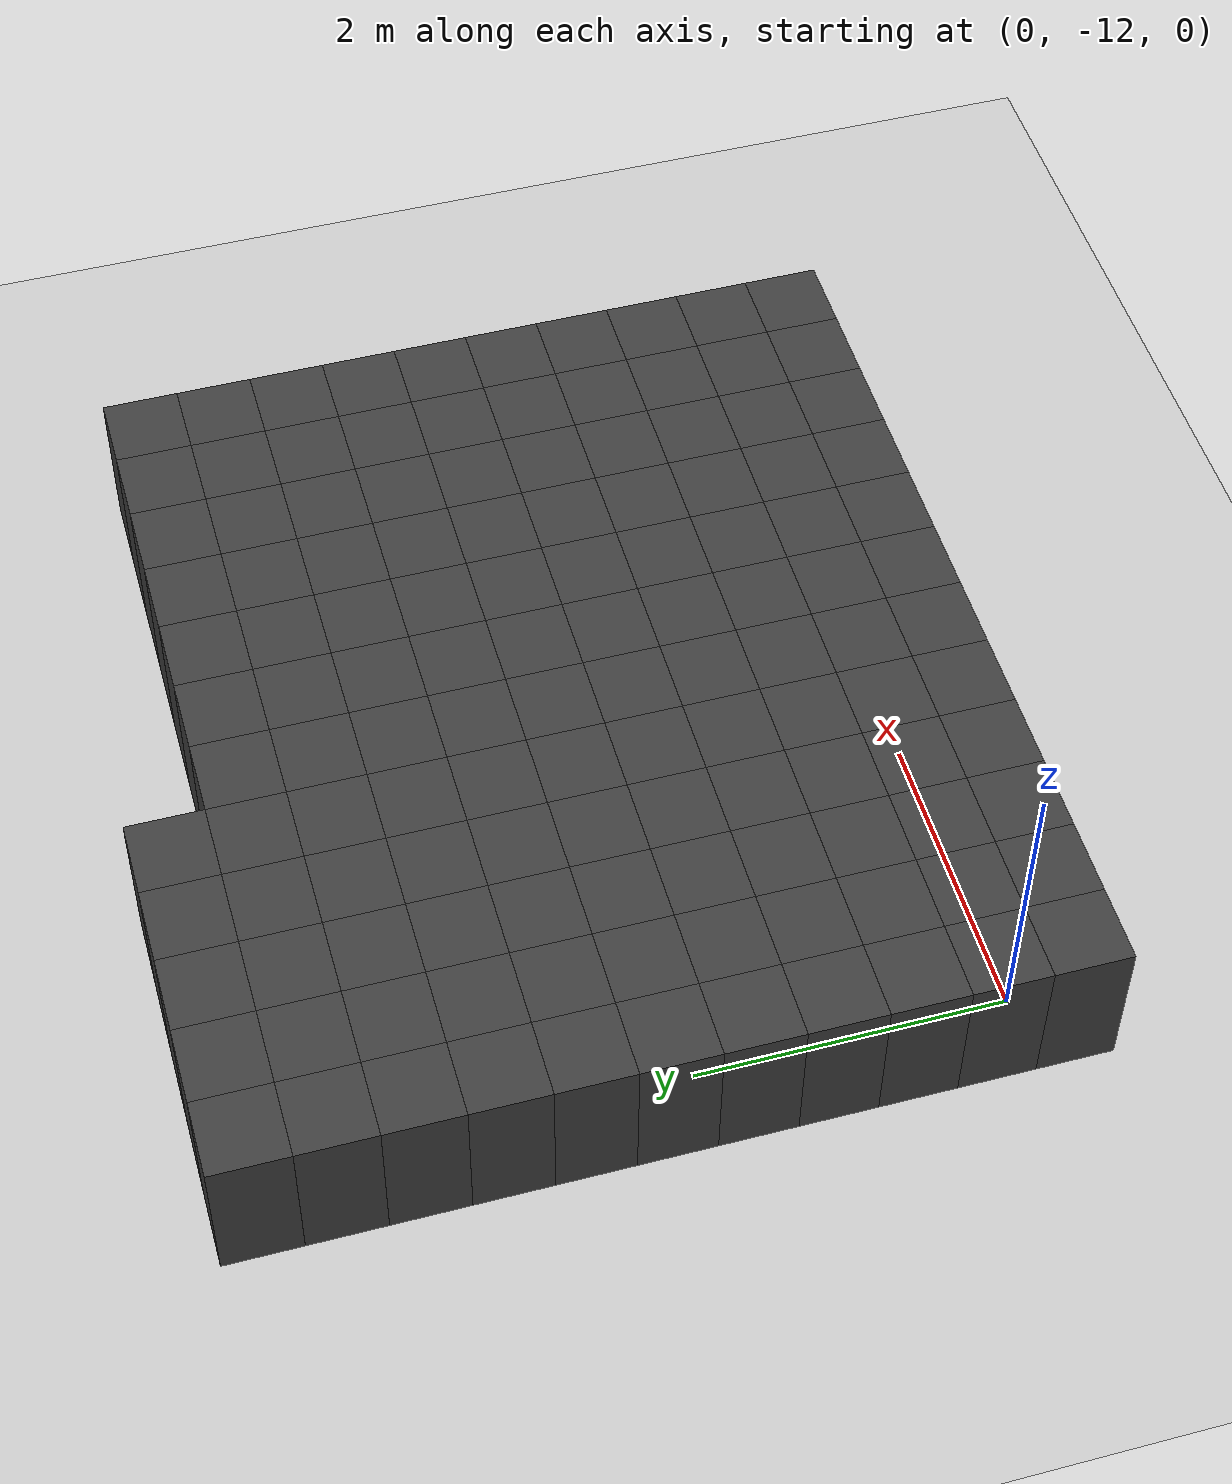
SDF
<sdf version="1.7">
 <world name="map_10764">
  <model name="ground_plane">
   <static>true</static>
   <link name="link">
    <collision name="collision">
     <geometry><plane><normal>0 0 1</normal><size>200 200</size></plane></geometry>
    </collision>
    <visual name="visual">
     <geometry><plane><normal>0 0 1</normal><size>200 200</size></plane></geometry>
     <material><ambient>0.8 0.8 0.8 1</ambient><diffuse>0.8 0.8 0.8 1</diffuse></material>
    </visual>
   </link>
  </model>
  <model name="maze_environment">
   <static>true</static>
   <link name="wall_1623">
    <pose>-0.250 -7.250 0.500 0 0 0</pose>
    <collision name="col"><geometry><box><size>0.5 0.5 1.0</size></box></geometry></collision>
    <visual name="vis">
     <geometry><box><size>0.5 0.5 1.0</size></box></geometry>
     <material><ambient>0.15 0.15 0.15 1</ambient><diffuse>0.25 0.25 0.25 1</diffuse></material>
    </visual>
   </link>
   <link name="wall_1624">
    <pose>0.250 -7.250 0.500 0 0 0</pose>
    <collision name="col"><geometry><box><size>0.5 0.5 1.0</size></box></geometry></collision>
    <visual name="vis">
     <geometry><box><size>0.5 0.5 1.0</size></box></geometry>
     <material><ambient>0.15 0.15 0.15 1</ambient><diffuse>0.25 0.25 0.25 1</diffuse></material>
    </visual>
   </link>
   <link name="wall_1625">
    <pose>0.750 -7.250 0.500 0 0 0</pose>
    <collision name="col"><geometry><box><size>0.5 0.5 1.0</size></box></geometry></collision>
    <visual name="vis">
     <geometry><box><size>0.5 0.5 1.0</size></box></geometry>
     <material><ambient>0.15 0.15 0.15 1</ambient><diffuse>0.25 0.25 0.25 1</diffuse></material>
    </visual>
   </link>
   <link name="wall_1626">
    <pose>1.250 -7.250 0.500 0 0 0</pose>
    <collision name="col"><geometry><box><size>0.5 0.5 1.0</size></box></geometry></collision>
    <visual name="vis">
     <geometry><box><size>0.5 0.5 1.0</size></box></geometry>
     <material><ambient>0.15 0.15 0.15 1</ambient><diffuse>0.25 0.25 0.25 1</diffuse></material>
    </visual>
   </link>
   <link name="wall_1627">
    <pose>1.750 -7.250 0.500 0 0 0</pose>
    <collision name="col"><geometry><box><size>0.5 0.5 1.0</size></box></geometry></collision>
    <visual name="vis">
     <geometry><box><size>0.5 0.5 1.0</size></box></geometry>
     <material><ambient>0.15 0.15 0.15 1</ambient><diffuse>0.25 0.25 0.25 1</diffuse></material>
    </visual>
   </link>
   <link name="wall_1672">
    <pose>-0.250 -7.750 0.500 0 0 0</pose>
    <collision name="col"><geometry><box><size>0.5 0.5 1.0</size></box></geometry></collision>
    <visual name="vis">
     <geometry><box><size>0.5 0.5 1.0</size></box></geometry>
     <material><ambient>0.15 0.15 0.15 1</ambient><diffuse>0.25 0.25 0.25 1</diffuse></material>
    </visual>
   </link>
   <link name="wall_1673">
    <pose>0.250 -7.750 0.500 0 0 0</pose>
    <collision name="col"><geometry><box><size>0.5 0.5 1.0</size></box></geometry></collision>
    <visual name="vis">
     <geometry><box><size>0.5 0.5 1.0</size></box></geometry>
     <material><ambient>0.15 0.15 0.15 1</ambient><diffuse>0.25 0.25 0.25 1</diffuse></material>
    </visual>
   </link>
   <link name="wall_1674">
    <pose>0.750 -7.750 0.500 0 0 0</pose>
    <collision name="col"><geometry><box><size>0.5 0.5 1.0</size></box></geometry></collision>
    <visual name="vis">
     <geometry><box><size>0.5 0.5 1.0</size></box></geometry>
     <material><ambient>0.15 0.15 0.15 1</ambient><diffuse>0.25 0.25 0.25 1</diffuse></material>
    </visual>
   </link>
   <link name="wall_1675">
    <pose>1.250 -7.750 0.500 0 0 0</pose>
    <collision name="col"><geometry><box><size>0.5 0.5 1.0</size></box></geometry></collision>
    <visual name="vis">
     <geometry><box><size>0.5 0.5 1.0</size></box></geometry>
     <material><ambient>0.15 0.15 0.15 1</ambient><diffuse>0.25 0.25 0.25 1</diffuse></material>
    </visual>
   </link>
   <link name="wall_1676">
    <pose>1.750 -7.750 0.500 0 0 0</pose>
    <collision name="col"><geometry><box><size>0.5 0.5 1.0</size></box></geometry></collision>
    <visual name="vis">
     <geometry><box><size>0.5 0.5 1.0</size></box></geometry>
     <material><ambient>0.15 0.15 0.15 1</ambient><diffuse>0.25 0.25 0.25 1</diffuse></material>
    </visual>
   </link>
   <link name="wall_1677">
    <pose>2.250 -7.750 0.500 0 0 0</pose>
    <collision name="col"><geometry><box><size>0.5 0.5 1.0</size></box></geometry></collision>
    <visual name="vis">
     <geometry><box><size>0.5 0.5 1.0</size></box></geometry>
     <material><ambient>0.15 0.15 0.15 1</ambient><diffuse>0.25 0.25 0.25 1</diffuse></material>
    </visual>
   </link>
   <link name="wall_1678">
    <pose>2.750 -7.750 0.500 0 0 0</pose>
    <collision name="col"><geometry><box><size>0.5 0.5 1.0</size></box></geometry></collision>
    <visual name="vis">
     <geometry><box><size>0.5 0.5 1.0</size></box></geometry>
     <material><ambient>0.15 0.15 0.15 1</ambient><diffuse>0.25 0.25 0.25 1</diffuse></material>
    </visual>
   </link>
   <link name="wall_1679">
    <pose>3.250 -7.750 0.500 0 0 0</pose>
    <collision name="col"><geometry><box><size>0.5 0.5 1.0</size></box></geometry></collision>
    <visual name="vis">
     <geometry><box><size>0.5 0.5 1.0</size></box></geometry>
     <material><ambient>0.15 0.15 0.15 1</ambient><diffuse>0.25 0.25 0.25 1</diffuse></material>
    </visual>
   </link>
   <link name="wall_1680">
    <pose>3.750 -7.750 0.500 0 0 0</pose>
    <collision name="col"><geometry><box><size>0.5 0.5 1.0</size></box></geometry></collision>
    <visual name="vis">
     <geometry><box><size>0.5 0.5 1.0</size></box></geometry>
     <material><ambient>0.15 0.15 0.15 1</ambient><diffuse>0.25 0.25 0.25 1</diffuse></material>
    </visual>
   </link>
   <link name="wall_1681">
    <pose>4.250 -7.750 0.500 0 0 0</pose>
    <collision name="col"><geometry><box><size>0.5 0.5 1.0</size></box></geometry></collision>
    <visual name="vis">
     <geometry><box><size>0.5 0.5 1.0</size></box></geometry>
     <material><ambient>0.15 0.15 0.15 1</ambient><diffuse>0.25 0.25 0.25 1</diffuse></material>
    </visual>
   </link>
   <link name="wall_1682">
    <pose>4.750 -7.750 0.500 0 0 0</pose>
    <collision name="col"><geometry><box><size>0.5 0.5 1.0</size></box></geometry></collision>
    <visual name="vis">
     <geometry><box><size>0.5 0.5 1.0</size></box></geometry>
     <material><ambient>0.15 0.15 0.15 1</ambient><diffuse>0.25 0.25 0.25 1</diffuse></material>
    </visual>
   </link>
   <link name="wall_1683">
    <pose>5.250 -7.750 0.500 0 0 0</pose>
    <collision name="col"><geometry><box><size>0.5 0.5 1.0</size></box></geometry></collision>
    <visual name="vis">
     <geometry><box><size>0.5 0.5 1.0</size></box></geometry>
     <material><ambient>0.15 0.15 0.15 1</ambient><diffuse>0.25 0.25 0.25 1</diffuse></material>
    </visual>
   </link>
   <link name="wall_1721">
    <pose>-0.250 -8.250 0.500 0 0 0</pose>
    <collision name="col"><geometry><box><size>0.5 0.5 1.0</size></box></geometry></collision>
    <visual name="vis">
     <geometry><box><size>0.5 0.5 1.0</size></box></geometry>
     <material><ambient>0.15 0.15 0.15 1</ambient><diffuse>0.25 0.25 0.25 1</diffuse></material>
    </visual>
   </link>
   <link name="wall_1722">
    <pose>0.250 -8.250 0.500 0 0 0</pose>
    <collision name="col"><geometry><box><size>0.5 0.5 1.0</size></box></geometry></collision>
    <visual name="vis">
     <geometry><box><size>0.5 0.5 1.0</size></box></geometry>
     <material><ambient>0.15 0.15 0.15 1</ambient><diffuse>0.25 0.25 0.25 1</diffuse></material>
    </visual>
   </link>
   <link name="wall_1723">
    <pose>0.750 -8.250 0.500 0 0 0</pose>
    <collision name="col"><geometry><box><size>0.5 0.5 1.0</size></box></geometry></collision>
    <visual name="vis">
     <geometry><box><size>0.5 0.5 1.0</size></box></geometry>
     <material><ambient>0.15 0.15 0.15 1</ambient><diffuse>0.25 0.25 0.25 1</diffuse></material>
    </visual>
   </link>
   <link name="wall_1724">
    <pose>1.250 -8.250 0.500 0 0 0</pose>
    <collision name="col"><geometry><box><size>0.5 0.5 1.0</size></box></geometry></collision>
    <visual name="vis">
     <geometry><box><size>0.5 0.5 1.0</size></box></geometry>
     <material><ambient>0.15 0.15 0.15 1</ambient><diffuse>0.25 0.25 0.25 1</diffuse></material>
    </visual>
   </link>
   <link name="wall_1725">
    <pose>1.750 -8.250 0.500 0 0 0</pose>
    <collision name="col"><geometry><box><size>0.5 0.5 1.0</size></box></geometry></collision>
    <visual name="vis">
     <geometry><box><size>0.5 0.5 1.0</size></box></geometry>
     <material><ambient>0.15 0.15 0.15 1</ambient><diffuse>0.25 0.25 0.25 1</diffuse></material>
    </visual>
   </link>
   <link name="wall_1726">
    <pose>2.250 -8.250 0.500 0 0 0</pose>
    <collision name="col"><geometry><box><size>0.5 0.5 1.0</size></box></geometry></collision>
    <visual name="vis">
     <geometry><box><size>0.5 0.5 1.0</size></box></geometry>
     <material><ambient>0.15 0.15 0.15 1</ambient><diffuse>0.25 0.25 0.25 1</diffuse></material>
    </visual>
   </link>
   <link name="wall_1727">
    <pose>2.750 -8.250 0.500 0 0 0</pose>
    <collision name="col"><geometry><box><size>0.5 0.5 1.0</size></box></geometry></collision>
    <visual name="vis">
     <geometry><box><size>0.5 0.5 1.0</size></box></geometry>
     <material><ambient>0.15 0.15 0.15 1</ambient><diffuse>0.25 0.25 0.25 1</diffuse></material>
    </visual>
   </link>
   <link name="wall_1728">
    <pose>3.250 -8.250 0.500 0 0 0</pose>
    <collision name="col"><geometry><box><size>0.5 0.5 1.0</size></box></geometry></collision>
    <visual name="vis">
     <geometry><box><size>0.5 0.5 1.0</size></box></geometry>
     <material><ambient>0.15 0.15 0.15 1</ambient><diffuse>0.25 0.25 0.25 1</diffuse></material>
    </visual>
   </link>
   <link name="wall_1729">
    <pose>3.750 -8.250 0.500 0 0 0</pose>
    <collision name="col"><geometry><box><size>0.5 0.5 1.0</size></box></geometry></collision>
    <visual name="vis">
     <geometry><box><size>0.5 0.5 1.0</size></box></geometry>
     <material><ambient>0.15 0.15 0.15 1</ambient><diffuse>0.25 0.25 0.25 1</diffuse></material>
    </visual>
   </link>
   <link name="wall_1730">
    <pose>4.250 -8.250 0.500 0 0 0</pose>
    <collision name="col"><geometry><box><size>0.5 0.5 1.0</size></box></geometry></collision>
    <visual name="vis">
     <geometry><box><size>0.5 0.5 1.0</size></box></geometry>
     <material><ambient>0.15 0.15 0.15 1</ambient><diffuse>0.25 0.25 0.25 1</diffuse></material>
    </visual>
   </link>
   <link name="wall_1731">
    <pose>4.750 -8.250 0.500 0 0 0</pose>
    <collision name="col"><geometry><box><size>0.5 0.5 1.0</size></box></geometry></collision>
    <visual name="vis">
     <geometry><box><size>0.5 0.5 1.0</size></box></geometry>
     <material><ambient>0.15 0.15 0.15 1</ambient><diffuse>0.25 0.25 0.25 1</diffuse></material>
    </visual>
   </link>
   <link name="wall_1732">
    <pose>5.250 -8.250 0.500 0 0 0</pose>
    <collision name="col"><geometry><box><size>0.5 0.5 1.0</size></box></geometry></collision>
    <visual name="vis">
     <geometry><box><size>0.5 0.5 1.0</size></box></geometry>
     <material><ambient>0.15 0.15 0.15 1</ambient><diffuse>0.25 0.25 0.25 1</diffuse></material>
    </visual>
   </link>
   <link name="wall_1770">
    <pose>-0.250 -8.750 0.500 0 0 0</pose>
    <collision name="col"><geometry><box><size>0.5 0.5 1.0</size></box></geometry></collision>
    <visual name="vis">
     <geometry><box><size>0.5 0.5 1.0</size></box></geometry>
     <material><ambient>0.15 0.15 0.15 1</ambient><diffuse>0.25 0.25 0.25 1</diffuse></material>
    </visual>
   </link>
   <link name="wall_1771">
    <pose>0.250 -8.750 0.500 0 0 0</pose>
    <collision name="col"><geometry><box><size>0.5 0.5 1.0</size></box></geometry></collision>
    <visual name="vis">
     <geometry><box><size>0.5 0.5 1.0</size></box></geometry>
     <material><ambient>0.15 0.15 0.15 1</ambient><diffuse>0.25 0.25 0.25 1</diffuse></material>
    </visual>
   </link>
   <link name="wall_1772">
    <pose>0.750 -8.750 0.500 0 0 0</pose>
    <collision name="col"><geometry><box><size>0.5 0.5 1.0</size></box></geometry></collision>
    <visual name="vis">
     <geometry><box><size>0.5 0.5 1.0</size></box></geometry>
     <material><ambient>0.15 0.15 0.15 1</ambient><diffuse>0.25 0.25 0.25 1</diffuse></material>
    </visual>
   </link>
   <link name="wall_1773">
    <pose>1.250 -8.750 0.500 0 0 0</pose>
    <collision name="col"><geometry><box><size>0.5 0.5 1.0</size></box></geometry></collision>
    <visual name="vis">
     <geometry><box><size>0.5 0.5 1.0</size></box></geometry>
     <material><ambient>0.15 0.15 0.15 1</ambient><diffuse>0.25 0.25 0.25 1</diffuse></material>
    </visual>
   </link>
   <link name="wall_1774">
    <pose>1.750 -8.750 0.500 0 0 0</pose>
    <collision name="col"><geometry><box><size>0.5 0.5 1.0</size></box></geometry></collision>
    <visual name="vis">
     <geometry><box><size>0.5 0.5 1.0</size></box></geometry>
     <material><ambient>0.15 0.15 0.15 1</ambient><diffuse>0.25 0.25 0.25 1</diffuse></material>
    </visual>
   </link>
   <link name="wall_1775">
    <pose>2.250 -8.750 0.500 0 0 0</pose>
    <collision name="col"><geometry><box><size>0.5 0.5 1.0</size></box></geometry></collision>
    <visual name="vis">
     <geometry><box><size>0.5 0.5 1.0</size></box></geometry>
     <material><ambient>0.15 0.15 0.15 1</ambient><diffuse>0.25 0.25 0.25 1</diffuse></material>
    </visual>
   </link>
   <link name="wall_1776">
    <pose>2.750 -8.750 0.500 0 0 0</pose>
    <collision name="col"><geometry><box><size>0.5 0.5 1.0</size></box></geometry></collision>
    <visual name="vis">
     <geometry><box><size>0.5 0.5 1.0</size></box></geometry>
     <material><ambient>0.15 0.15 0.15 1</ambient><diffuse>0.25 0.25 0.25 1</diffuse></material>
    </visual>
   </link>
   <link name="wall_1777">
    <pose>3.250 -8.750 0.500 0 0 0</pose>
    <collision name="col"><geometry><box><size>0.5 0.5 1.0</size></box></geometry></collision>
    <visual name="vis">
     <geometry><box><size>0.5 0.5 1.0</size></box></geometry>
     <material><ambient>0.15 0.15 0.15 1</ambient><diffuse>0.25 0.25 0.25 1</diffuse></material>
    </visual>
   </link>
   <link name="wall_1778">
    <pose>3.750 -8.750 0.500 0 0 0</pose>
    <collision name="col"><geometry><box><size>0.5 0.5 1.0</size></box></geometry></collision>
    <visual name="vis">
     <geometry><box><size>0.5 0.5 1.0</size></box></geometry>
     <material><ambient>0.15 0.15 0.15 1</ambient><diffuse>0.25 0.25 0.25 1</diffuse></material>
    </visual>
   </link>
   <link name="wall_1779">
    <pose>4.250 -8.750 0.500 0 0 0</pose>
    <collision name="col"><geometry><box><size>0.5 0.5 1.0</size></box></geometry></collision>
    <visual name="vis">
     <geometry><box><size>0.5 0.5 1.0</size></box></geometry>
     <material><ambient>0.15 0.15 0.15 1</ambient><diffuse>0.25 0.25 0.25 1</diffuse></material>
    </visual>
   </link>
   <link name="wall_1780">
    <pose>4.750 -8.750 0.500 0 0 0</pose>
    <collision name="col"><geometry><box><size>0.5 0.5 1.0</size></box></geometry></collision>
    <visual name="vis">
     <geometry><box><size>0.5 0.5 1.0</size></box></geometry>
     <material><ambient>0.15 0.15 0.15 1</ambient><diffuse>0.25 0.25 0.25 1</diffuse></material>
    </visual>
   </link>
   <link name="wall_1781">
    <pose>5.250 -8.750 0.500 0 0 0</pose>
    <collision name="col"><geometry><box><size>0.5 0.5 1.0</size></box></geometry></collision>
    <visual name="vis">
     <geometry><box><size>0.5 0.5 1.0</size></box></geometry>
     <material><ambient>0.15 0.15 0.15 1</ambient><diffuse>0.25 0.25 0.25 1</diffuse></material>
    </visual>
   </link>
   <link name="wall_1819">
    <pose>-0.250 -9.250 0.500 0 0 0</pose>
    <collision name="col"><geometry><box><size>0.5 0.5 1.0</size></box></geometry></collision>
    <visual name="vis">
     <geometry><box><size>0.5 0.5 1.0</size></box></geometry>
     <material><ambient>0.15 0.15 0.15 1</ambient><diffuse>0.25 0.25 0.25 1</diffuse></material>
    </visual>
   </link>
   <link name="wall_1820">
    <pose>0.250 -9.250 0.500 0 0 0</pose>
    <collision name="col"><geometry><box><size>0.5 0.5 1.0</size></box></geometry></collision>
    <visual name="vis">
     <geometry><box><size>0.5 0.5 1.0</size></box></geometry>
     <material><ambient>0.15 0.15 0.15 1</ambient><diffuse>0.25 0.25 0.25 1</diffuse></material>
    </visual>
   </link>
   <link name="wall_1821">
    <pose>0.750 -9.250 0.500 0 0 0</pose>
    <collision name="col"><geometry><box><size>0.5 0.5 1.0</size></box></geometry></collision>
    <visual name="vis">
     <geometry><box><size>0.5 0.5 1.0</size></box></geometry>
     <material><ambient>0.15 0.15 0.15 1</ambient><diffuse>0.25 0.25 0.25 1</diffuse></material>
    </visual>
   </link>
   <link name="wall_1822">
    <pose>1.250 -9.250 0.500 0 0 0</pose>
    <collision name="col"><geometry><box><size>0.5 0.5 1.0</size></box></geometry></collision>
    <visual name="vis">
     <geometry><box><size>0.5 0.5 1.0</size></box></geometry>
     <material><ambient>0.15 0.15 0.15 1</ambient><diffuse>0.25 0.25 0.25 1</diffuse></material>
    </visual>
   </link>
   <link name="wall_1823">
    <pose>1.750 -9.250 0.500 0 0 0</pose>
    <collision name="col"><geometry><box><size>0.5 0.5 1.0</size></box></geometry></collision>
    <visual name="vis">
     <geometry><box><size>0.5 0.5 1.0</size></box></geometry>
     <material><ambient>0.15 0.15 0.15 1</ambient><diffuse>0.25 0.25 0.25 1</diffuse></material>
    </visual>
   </link>
   <link name="wall_1824">
    <pose>2.250 -9.250 0.500 0 0 0</pose>
    <collision name="col"><geometry><box><size>0.5 0.5 1.0</size></box></geometry></collision>
    <visual name="vis">
     <geometry><box><size>0.5 0.5 1.0</size></box></geometry>
     <material><ambient>0.15 0.15 0.15 1</ambient><diffuse>0.25 0.25 0.25 1</diffuse></material>
    </visual>
   </link>
   <link name="wall_1825">
    <pose>2.750 -9.250 0.500 0 0 0</pose>
    <collision name="col"><geometry><box><size>0.5 0.5 1.0</size></box></geometry></collision>
    <visual name="vis">
     <geometry><box><size>0.5 0.5 1.0</size></box></geometry>
     <material><ambient>0.15 0.15 0.15 1</ambient><diffuse>0.25 0.25 0.25 1</diffuse></material>
    </visual>
   </link>
   <link name="wall_1826">
    <pose>3.250 -9.250 0.500 0 0 0</pose>
    <collision name="col"><geometry><box><size>0.5 0.5 1.0</size></box></geometry></collision>
    <visual name="vis">
     <geometry><box><size>0.5 0.5 1.0</size></box></geometry>
     <material><ambient>0.15 0.15 0.15 1</ambient><diffuse>0.25 0.25 0.25 1</diffuse></material>
    </visual>
   </link>
   <link name="wall_1827">
    <pose>3.750 -9.250 0.500 0 0 0</pose>
    <collision name="col"><geometry><box><size>0.5 0.5 1.0</size></box></geometry></collision>
    <visual name="vis">
     <geometry><box><size>0.5 0.5 1.0</size></box></geometry>
     <material><ambient>0.15 0.15 0.15 1</ambient><diffuse>0.25 0.25 0.25 1</diffuse></material>
    </visual>
   </link>
   <link name="wall_1828">
    <pose>4.250 -9.250 0.500 0 0 0</pose>
    <collision name="col"><geometry><box><size>0.5 0.5 1.0</size></box></geometry></collision>
    <visual name="vis">
     <geometry><box><size>0.5 0.5 1.0</size></box></geometry>
     <material><ambient>0.15 0.15 0.15 1</ambient><diffuse>0.25 0.25 0.25 1</diffuse></material>
    </visual>
   </link>
   <link name="wall_1829">
    <pose>4.750 -9.250 0.500 0 0 0</pose>
    <collision name="col"><geometry><box><size>0.5 0.5 1.0</size></box></geometry></collision>
    <visual name="vis">
     <geometry><box><size>0.5 0.5 1.0</size></box></geometry>
     <material><ambient>0.15 0.15 0.15 1</ambient><diffuse>0.25 0.25 0.25 1</diffuse></material>
    </visual>
   </link>
   <link name="wall_1830">
    <pose>5.250 -9.250 0.500 0 0 0</pose>
    <collision name="col"><geometry><box><size>0.5 0.5 1.0</size></box></geometry></collision>
    <visual name="vis">
     <geometry><box><size>0.5 0.5 1.0</size></box></geometry>
     <material><ambient>0.15 0.15 0.15 1</ambient><diffuse>0.25 0.25 0.25 1</diffuse></material>
    </visual>
   </link>
   <link name="wall_1868">
    <pose>-0.250 -9.750 0.500 0 0 0</pose>
    <collision name="col"><geometry><box><size>0.5 0.5 1.0</size></box></geometry></collision>
    <visual name="vis">
     <geometry><box><size>0.5 0.5 1.0</size></box></geometry>
     <material><ambient>0.15 0.15 0.15 1</ambient><diffuse>0.25 0.25 0.25 1</diffuse></material>
    </visual>
   </link>
   <link name="wall_1869">
    <pose>0.250 -9.750 0.500 0 0 0</pose>
    <collision name="col"><geometry><box><size>0.5 0.5 1.0</size></box></geometry></collision>
    <visual name="vis">
     <geometry><box><size>0.5 0.5 1.0</size></box></geometry>
     <material><ambient>0.15 0.15 0.15 1</ambient><diffuse>0.25 0.25 0.25 1</diffuse></material>
    </visual>
   </link>
   <link name="wall_1870">
    <pose>0.750 -9.750 0.500 0 0 0</pose>
    <collision name="col"><geometry><box><size>0.5 0.5 1.0</size></box></geometry></collision>
    <visual name="vis">
     <geometry><box><size>0.5 0.5 1.0</size></box></geometry>
     <material><ambient>0.15 0.15 0.15 1</ambient><diffuse>0.25 0.25 0.25 1</diffuse></material>
    </visual>
   </link>
   <link name="wall_1871">
    <pose>1.250 -9.750 0.500 0 0 0</pose>
    <collision name="col"><geometry><box><size>0.5 0.5 1.0</size></box></geometry></collision>
    <visual name="vis">
     <geometry><box><size>0.5 0.5 1.0</size></box></geometry>
     <material><ambient>0.15 0.15 0.15 1</ambient><diffuse>0.25 0.25 0.25 1</diffuse></material>
    </visual>
   </link>
   <link name="wall_1872">
    <pose>1.750 -9.750 0.500 0 0 0</pose>
    <collision name="col"><geometry><box><size>0.5 0.5 1.0</size></box></geometry></collision>
    <visual name="vis">
     <geometry><box><size>0.5 0.5 1.0</size></box></geometry>
     <material><ambient>0.15 0.15 0.15 1</ambient><diffuse>0.25 0.25 0.25 1</diffuse></material>
    </visual>
   </link>
   <link name="wall_1873">
    <pose>2.250 -9.750 0.500 0 0 0</pose>
    <collision name="col"><geometry><box><size>0.5 0.5 1.0</size></box></geometry></collision>
    <visual name="vis">
     <geometry><box><size>0.5 0.5 1.0</size></box></geometry>
     <material><ambient>0.15 0.15 0.15 1</ambient><diffuse>0.25 0.25 0.25 1</diffuse></material>
    </visual>
   </link>
   <link name="wall_1874">
    <pose>2.750 -9.750 0.500 0 0 0</pose>
    <collision name="col"><geometry><box><size>0.5 0.5 1.0</size></box></geometry></collision>
    <visual name="vis">
     <geometry><box><size>0.5 0.5 1.0</size></box></geometry>
     <material><ambient>0.15 0.15 0.15 1</ambient><diffuse>0.25 0.25 0.25 1</diffuse></material>
    </visual>
   </link>
   <link name="wall_1875">
    <pose>3.250 -9.750 0.500 0 0 0</pose>
    <collision name="col"><geometry><box><size>0.5 0.5 1.0</size></box></geometry></collision>
    <visual name="vis">
     <geometry><box><size>0.5 0.5 1.0</size></box></geometry>
     <material><ambient>0.15 0.15 0.15 1</ambient><diffuse>0.25 0.25 0.25 1</diffuse></material>
    </visual>
   </link>
   <link name="wall_1876">
    <pose>3.750 -9.750 0.500 0 0 0</pose>
    <collision name="col"><geometry><box><size>0.5 0.5 1.0</size></box></geometry></collision>
    <visual name="vis">
     <geometry><box><size>0.5 0.5 1.0</size></box></geometry>
     <material><ambient>0.15 0.15 0.15 1</ambient><diffuse>0.25 0.25 0.25 1</diffuse></material>
    </visual>
   </link>
   <link name="wall_1877">
    <pose>4.250 -9.750 0.500 0 0 0</pose>
    <collision name="col"><geometry><box><size>0.5 0.5 1.0</size></box></geometry></collision>
    <visual name="vis">
     <geometry><box><size>0.5 0.5 1.0</size></box></geometry>
     <material><ambient>0.15 0.15 0.15 1</ambient><diffuse>0.25 0.25 0.25 1</diffuse></material>
    </visual>
   </link>
   <link name="wall_1878">
    <pose>4.750 -9.750 0.500 0 0 0</pose>
    <collision name="col"><geometry><box><size>0.5 0.5 1.0</size></box></geometry></collision>
    <visual name="vis">
     <geometry><box><size>0.5 0.5 1.0</size></box></geometry>
     <material><ambient>0.15 0.15 0.15 1</ambient><diffuse>0.25 0.25 0.25 1</diffuse></material>
    </visual>
   </link>
   <link name="wall_1879">
    <pose>5.250 -9.750 0.500 0 0 0</pose>
    <collision name="col"><geometry><box><size>0.5 0.5 1.0</size></box></geometry></collision>
    <visual name="vis">
     <geometry><box><size>0.5 0.5 1.0</size></box></geometry>
     <material><ambient>0.15 0.15 0.15 1</ambient><diffuse>0.25 0.25 0.25 1</diffuse></material>
    </visual>
   </link>
   <link name="wall_1917">
    <pose>-0.250 -10.250 0.500 0 0 0</pose>
    <collision name="col"><geometry><box><size>0.5 0.5 1.0</size></box></geometry></collision>
    <visual name="vis">
     <geometry><box><size>0.5 0.5 1.0</size></box></geometry>
     <material><ambient>0.15 0.15 0.15 1</ambient><diffuse>0.25 0.25 0.25 1</diffuse></material>
    </visual>
   </link>
   <link name="wall_1918">
    <pose>0.250 -10.250 0.500 0 0 0</pose>
    <collision name="col"><geometry><box><size>0.5 0.5 1.0</size></box></geometry></collision>
    <visual name="vis">
     <geometry><box><size>0.5 0.5 1.0</size></box></geometry>
     <material><ambient>0.15 0.15 0.15 1</ambient><diffuse>0.25 0.25 0.25 1</diffuse></material>
    </visual>
   </link>
   <link name="wall_1919">
    <pose>0.750 -10.250 0.500 0 0 0</pose>
    <collision name="col"><geometry><box><size>0.5 0.5 1.0</size></box></geometry></collision>
    <visual name="vis">
     <geometry><box><size>0.5 0.5 1.0</size></box></geometry>
     <material><ambient>0.15 0.15 0.15 1</ambient><diffuse>0.25 0.25 0.25 1</diffuse></material>
    </visual>
   </link>
   <link name="wall_1920">
    <pose>1.250 -10.250 0.500 0 0 0</pose>
    <collision name="col"><geometry><box><size>0.5 0.5 1.0</size></box></geometry></collision>
    <visual name="vis">
     <geometry><box><size>0.5 0.5 1.0</size></box></geometry>
     <material><ambient>0.15 0.15 0.15 1</ambient><diffuse>0.25 0.25 0.25 1</diffuse></material>
    </visual>
   </link>
   <link name="wall_1921">
    <pose>1.750 -10.250 0.500 0 0 0</pose>
    <collision name="col"><geometry><box><size>0.5 0.5 1.0</size></box></geometry></collision>
    <visual name="vis">
     <geometry><box><size>0.5 0.5 1.0</size></box></geometry>
     <material><ambient>0.15 0.15 0.15 1</ambient><diffuse>0.25 0.25 0.25 1</diffuse></material>
    </visual>
   </link>
   <link name="wall_1922">
    <pose>2.250 -10.250 0.500 0 0 0</pose>
    <collision name="col"><geometry><box><size>0.5 0.5 1.0</size></box></geometry></collision>
    <visual name="vis">
     <geometry><box><size>0.5 0.5 1.0</size></box></geometry>
     <material><ambient>0.15 0.15 0.15 1</ambient><diffuse>0.25 0.25 0.25 1</diffuse></material>
    </visual>
   </link>
   <link name="wall_1923">
    <pose>2.750 -10.250 0.500 0 0 0</pose>
    <collision name="col"><geometry><box><size>0.5 0.5 1.0</size></box></geometry></collision>
    <visual name="vis">
     <geometry><box><size>0.5 0.5 1.0</size></box></geometry>
     <material><ambient>0.15 0.15 0.15 1</ambient><diffuse>0.25 0.25 0.25 1</diffuse></material>
    </visual>
   </link>
   <link name="wall_1924">
    <pose>3.250 -10.250 0.500 0 0 0</pose>
    <collision name="col"><geometry><box><size>0.5 0.5 1.0</size></box></geometry></collision>
    <visual name="vis">
     <geometry><box><size>0.5 0.5 1.0</size></box></geometry>
     <material><ambient>0.15 0.15 0.15 1</ambient><diffuse>0.25 0.25 0.25 1</diffuse></material>
    </visual>
   </link>
   <link name="wall_1925">
    <pose>3.750 -10.250 0.500 0 0 0</pose>
    <collision name="col"><geometry><box><size>0.5 0.5 1.0</size></box></geometry></collision>
    <visual name="vis">
     <geometry><box><size>0.5 0.5 1.0</size></box></geometry>
     <material><ambient>0.15 0.15 0.15 1</ambient><diffuse>0.25 0.25 0.25 1</diffuse></material>
    </visual>
   </link>
   <link name="wall_1926">
    <pose>4.250 -10.250 0.500 0 0 0</pose>
    <collision name="col"><geometry><box><size>0.5 0.5 1.0</size></box></geometry></collision>
    <visual name="vis">
     <geometry><box><size>0.5 0.5 1.0</size></box></geometry>
     <material><ambient>0.15 0.15 0.15 1</ambient><diffuse>0.25 0.25 0.25 1</diffuse></material>
    </visual>
   </link>
   <link name="wall_1927">
    <pose>4.750 -10.250 0.500 0 0 0</pose>
    <collision name="col"><geometry><box><size>0.5 0.5 1.0</size></box></geometry></collision>
    <visual name="vis">
     <geometry><box><size>0.5 0.5 1.0</size></box></geometry>
     <material><ambient>0.15 0.15 0.15 1</ambient><diffuse>0.25 0.25 0.25 1</diffuse></material>
    </visual>
   </link>
   <link name="wall_1928">
    <pose>5.250 -10.250 0.500 0 0 0</pose>
    <collision name="col"><geometry><box><size>0.5 0.5 1.0</size></box></geometry></collision>
    <visual name="vis">
     <geometry><box><size>0.5 0.5 1.0</size></box></geometry>
     <material><ambient>0.15 0.15 0.15 1</ambient><diffuse>0.25 0.25 0.25 1</diffuse></material>
    </visual>
   </link>
   <link name="wall_1966">
    <pose>-0.250 -10.750 0.500 0 0 0</pose>
    <collision name="col"><geometry><box><size>0.5 0.5 1.0</size></box></geometry></collision>
    <visual name="vis">
     <geometry><box><size>0.5 0.5 1.0</size></box></geometry>
     <material><ambient>0.15 0.15 0.15 1</ambient><diffuse>0.25 0.25 0.25 1</diffuse></material>
    </visual>
   </link>
   <link name="wall_1967">
    <pose>0.250 -10.750 0.500 0 0 0</pose>
    <collision name="col"><geometry><box><size>0.5 0.5 1.0</size></box></geometry></collision>
    <visual name="vis">
     <geometry><box><size>0.5 0.5 1.0</size></box></geometry>
     <material><ambient>0.15 0.15 0.15 1</ambient><diffuse>0.25 0.25 0.25 1</diffuse></material>
    </visual>
   </link>
   <link name="wall_1968">
    <pose>0.750 -10.750 0.500 0 0 0</pose>
    <collision name="col"><geometry><box><size>0.5 0.5 1.0</size></box></geometry></collision>
    <visual name="vis">
     <geometry><box><size>0.5 0.5 1.0</size></box></geometry>
     <material><ambient>0.15 0.15 0.15 1</ambient><diffuse>0.25 0.25 0.25 1</diffuse></material>
    </visual>
   </link>
   <link name="wall_1969">
    <pose>1.250 -10.750 0.500 0 0 0</pose>
    <collision name="col"><geometry><box><size>0.5 0.5 1.0</size></box></geometry></collision>
    <visual name="vis">
     <geometry><box><size>0.5 0.5 1.0</size></box></geometry>
     <material><ambient>0.15 0.15 0.15 1</ambient><diffuse>0.25 0.25 0.25 1</diffuse></material>
    </visual>
   </link>
   <link name="wall_1970">
    <pose>1.750 -10.750 0.500 0 0 0</pose>
    <collision name="col"><geometry><box><size>0.5 0.5 1.0</size></box></geometry></collision>
    <visual name="vis">
     <geometry><box><size>0.5 0.5 1.0</size></box></geometry>
     <material><ambient>0.15 0.15 0.15 1</ambient><diffuse>0.25 0.25 0.25 1</diffuse></material>
    </visual>
   </link>
   <link name="wall_1971">
    <pose>2.250 -10.750 0.500 0 0 0</pose>
    <collision name="col"><geometry><box><size>0.5 0.5 1.0</size></box></geometry></collision>
    <visual name="vis">
     <geometry><box><size>0.5 0.5 1.0</size></box></geometry>
     <material><ambient>0.15 0.15 0.15 1</ambient><diffuse>0.25 0.25 0.25 1</diffuse></material>
    </visual>
   </link>
   <link name="wall_1972">
    <pose>2.750 -10.750 0.500 0 0 0</pose>
    <collision name="col"><geometry><box><size>0.5 0.5 1.0</size></box></geometry></collision>
    <visual name="vis">
     <geometry><box><size>0.5 0.5 1.0</size></box></geometry>
     <material><ambient>0.15 0.15 0.15 1</ambient><diffuse>0.25 0.25 0.25 1</diffuse></material>
    </visual>
   </link>
   <link name="wall_1973">
    <pose>3.250 -10.750 0.500 0 0 0</pose>
    <collision name="col"><geometry><box><size>0.5 0.5 1.0</size></box></geometry></collision>
    <visual name="vis">
     <geometry><box><size>0.5 0.5 1.0</size></box></geometry>
     <material><ambient>0.15 0.15 0.15 1</ambient><diffuse>0.25 0.25 0.25 1</diffuse></material>
    </visual>
   </link>
   <link name="wall_1974">
    <pose>3.750 -10.750 0.500 0 0 0</pose>
    <collision name="col"><geometry><box><size>0.5 0.5 1.0</size></box></geometry></collision>
    <visual name="vis">
     <geometry><box><size>0.5 0.5 1.0</size></box></geometry>
     <material><ambient>0.15 0.15 0.15 1</ambient><diffuse>0.25 0.25 0.25 1</diffuse></material>
    </visual>
   </link>
   <link name="wall_1975">
    <pose>4.250 -10.750 0.500 0 0 0</pose>
    <collision name="col"><geometry><box><size>0.5 0.5 1.0</size></box></geometry></collision>
    <visual name="vis">
     <geometry><box><size>0.5 0.5 1.0</size></box></geometry>
     <material><ambient>0.15 0.15 0.15 1</ambient><diffuse>0.25 0.25 0.25 1</diffuse></material>
    </visual>
   </link>
   <link name="wall_1976">
    <pose>4.750 -10.750 0.500 0 0 0</pose>
    <collision name="col"><geometry><box><size>0.5 0.5 1.0</size></box></geometry></collision>
    <visual name="vis">
     <geometry><box><size>0.5 0.5 1.0</size></box></geometry>
     <material><ambient>0.15 0.15 0.15 1</ambient><diffuse>0.25 0.25 0.25 1</diffuse></material>
    </visual>
   </link>
   <link name="wall_1977">
    <pose>5.250 -10.750 0.500 0 0 0</pose>
    <collision name="col"><geometry><box><size>0.5 0.5 1.0</size></box></geometry></collision>
    <visual name="vis">
     <geometry><box><size>0.5 0.5 1.0</size></box></geometry>
     <material><ambient>0.15 0.15 0.15 1</ambient><diffuse>0.25 0.25 0.25 1</diffuse></material>
    </visual>
   </link>
   <link name="wall_2012">
    <pose>-0.250 -11.250 0.500 0 0 0</pose>
    <collision name="col"><geometry><box><size>0.5 0.5 1.0</size></box></geometry></collision>
    <visual name="vis">
     <geometry><box><size>0.5 0.5 1.0</size></box></geometry>
     <material><ambient>0.15 0.15 0.15 1</ambient><diffuse>0.25 0.25 0.25 1</diffuse></material>
    </visual>
   </link>
   <link name="wall_2013">
    <pose>0.250 -11.250 0.500 0 0 0</pose>
    <collision name="col"><geometry><box><size>0.5 0.5 1.0</size></box></geometry></collision>
    <visual name="vis">
     <geometry><box><size>0.5 0.5 1.0</size></box></geometry>
     <material><ambient>0.15 0.15 0.15 1</ambient><diffuse>0.25 0.25 0.25 1</diffuse></material>
    </visual>
   </link>
   <link name="wall_2014">
    <pose>0.750 -11.250 0.500 0 0 0</pose>
    <collision name="col"><geometry><box><size>0.5 0.5 1.0</size></box></geometry></collision>
    <visual name="vis">
     <geometry><box><size>0.5 0.5 1.0</size></box></geometry>
     <material><ambient>0.15 0.15 0.15 1</ambient><diffuse>0.25 0.25 0.25 1</diffuse></material>
    </visual>
   </link>
   <link name="wall_2015">
    <pose>1.250 -11.250 0.500 0 0 0</pose>
    <collision name="col"><geometry><box><size>0.5 0.5 1.0</size></box></geometry></collision>
    <visual name="vis">
     <geometry><box><size>0.5 0.5 1.0</size></box></geometry>
     <material><ambient>0.15 0.15 0.15 1</ambient><diffuse>0.25 0.25 0.25 1</diffuse></material>
    </visual>
   </link>
   <link name="wall_2016">
    <pose>1.750 -11.250 0.500 0 0 0</pose>
    <collision name="col"><geometry><box><size>0.5 0.5 1.0</size></box></geometry></collision>
    <visual name="vis">
     <geometry><box><size>0.5 0.5 1.0</size></box></geometry>
     <material><ambient>0.15 0.15 0.15 1</ambient><diffuse>0.25 0.25 0.25 1</diffuse></material>
    </visual>
   </link>
   <link name="wall_2017">
    <pose>2.250 -11.250 0.500 0 0 0</pose>
    <collision name="col"><geometry><box><size>0.5 0.5 1.0</size></box></geometry></collision>
    <visual name="vis">
     <geometry><box><size>0.5 0.5 1.0</size></box></geometry>
     <material><ambient>0.15 0.15 0.15 1</ambient><diffuse>0.25 0.25 0.25 1</diffuse></material>
    </visual>
   </link>
   <link name="wall_2018">
    <pose>2.750 -11.250 0.500 0 0 0</pose>
    <collision name="col"><geometry><box><size>0.5 0.5 1.0</size></box></geometry></collision>
    <visual name="vis">
     <geometry><box><size>0.5 0.5 1.0</size></box></geometry>
     <material><ambient>0.15 0.15 0.15 1</ambient><diffuse>0.25 0.25 0.25 1</diffuse></material>
    </visual>
   </link>
   <link name="wall_2019">
    <pose>3.250 -11.250 0.500 0 0 0</pose>
    <collision name="col"><geometry><box><size>0.5 0.5 1.0</size></box></geometry></collision>
    <visual name="vis">
     <geometry><box><size>0.5 0.5 1.0</size></box></geometry>
     <material><ambient>0.15 0.15 0.15 1</ambient><diffuse>0.25 0.25 0.25 1</diffuse></material>
    </visual>
   </link>
   <link name="wall_2020">
    <pose>3.750 -11.250 0.500 0 0 0</pose>
    <collision name="col"><geometry><box><size>0.5 0.5 1.0</size></box></geometry></collision>
    <visual name="vis">
     <geometry><box><size>0.5 0.5 1.0</size></box></geometry>
     <material><ambient>0.15 0.15 0.15 1</ambient><diffuse>0.25 0.25 0.25 1</diffuse></material>
    </visual>
   </link>
   <link name="wall_2021">
    <pose>4.250 -11.250 0.500 0 0 0</pose>
    <collision name="col"><geometry><box><size>0.5 0.5 1.0</size></box></geometry></collision>
    <visual name="vis">
     <geometry><box><size>0.5 0.5 1.0</size></box></geometry>
     <material><ambient>0.15 0.15 0.15 1</ambient><diffuse>0.25 0.25 0.25 1</diffuse></material>
    </visual>
   </link>
   <link name="wall_2022">
    <pose>4.750 -11.250 0.500 0 0 0</pose>
    <collision name="col"><geometry><box><size>0.5 0.5 1.0</size></box></geometry></collision>
    <visual name="vis">
     <geometry><box><size>0.5 0.5 1.0</size></box></geometry>
     <material><ambient>0.15 0.15 0.15 1</ambient><diffuse>0.25 0.25 0.25 1</diffuse></material>
    </visual>
   </link>
   <link name="wall_2023">
    <pose>5.250 -11.250 0.500 0 0 0</pose>
    <collision name="col"><geometry><box><size>0.5 0.5 1.0</size></box></geometry></collision>
    <visual name="vis">
     <geometry><box><size>0.5 0.5 1.0</size></box></geometry>
     <material><ambient>0.15 0.15 0.15 1</ambient><diffuse>0.25 0.25 0.25 1</diffuse></material>
    </visual>
   </link>
   <link name="wall_2057">
    <pose>-0.250 -11.750 0.500 0 0 0</pose>
    <collision name="col"><geometry><box><size>0.5 0.5 1.0</size></box></geometry></collision>
    <visual name="vis">
     <geometry><box><size>0.5 0.5 1.0</size></box></geometry>
     <material><ambient>0.15 0.15 0.15 1</ambient><diffuse>0.25 0.25 0.25 1</diffuse></material>
    </visual>
   </link>
   <link name="wall_2058">
    <pose>0.250 -11.750 0.500 0 0 0</pose>
    <collision name="col"><geometry><box><size>0.5 0.5 1.0</size></box></geometry></collision>
    <visual name="vis">
     <geometry><box><size>0.5 0.5 1.0</size></box></geometry>
     <material><ambient>0.15 0.15 0.15 1</ambient><diffuse>0.25 0.25 0.25 1</diffuse></material>
    </visual>
   </link>
   <link name="wall_2059">
    <pose>0.750 -11.750 0.500 0 0 0</pose>
    <collision name="col"><geometry><box><size>0.5 0.5 1.0</size></box></geometry></collision>
    <visual name="vis">
     <geometry><box><size>0.5 0.5 1.0</size></box></geometry>
     <material><ambient>0.15 0.15 0.15 1</ambient><diffuse>0.25 0.25 0.25 1</diffuse></material>
    </visual>
   </link>
   <link name="wall_2060">
    <pose>1.250 -11.750 0.500 0 0 0</pose>
    <collision name="col"><geometry><box><size>0.5 0.5 1.0</size></box></geometry></collision>
    <visual name="vis">
     <geometry><box><size>0.5 0.5 1.0</size></box></geometry>
     <material><ambient>0.15 0.15 0.15 1</ambient><diffuse>0.25 0.25 0.25 1</diffuse></material>
    </visual>
   </link>
   <link name="wall_2061">
    <pose>1.750 -11.750 0.500 0 0 0</pose>
    <collision name="col"><geometry><box><size>0.5 0.5 1.0</size></box></geometry></collision>
    <visual name="vis">
     <geometry><box><size>0.5 0.5 1.0</size></box></geometry>
     <material><ambient>0.15 0.15 0.15 1</ambient><diffuse>0.25 0.25 0.25 1</diffuse></material>
    </visual>
   </link>
   <link name="wall_2062">
    <pose>2.250 -11.750 0.500 0 0 0</pose>
    <collision name="col"><geometry><box><size>0.5 0.5 1.0</size></box></geometry></collision>
    <visual name="vis">
     <geometry><box><size>0.5 0.5 1.0</size></box></geometry>
     <material><ambient>0.15 0.15 0.15 1</ambient><diffuse>0.25 0.25 0.25 1</diffuse></material>
    </visual>
   </link>
   <link name="wall_2063">
    <pose>2.750 -11.750 0.500 0 0 0</pose>
    <collision name="col"><geometry><box><size>0.5 0.5 1.0</size></box></geometry></collision>
    <visual name="vis">
     <geometry><box><size>0.5 0.5 1.0</size></box></geometry>
     <material><ambient>0.15 0.15 0.15 1</ambient><diffuse>0.25 0.25 0.25 1</diffuse></material>
    </visual>
   </link>
   <link name="wall_2064">
    <pose>3.250 -11.750 0.500 0 0 0</pose>
    <collision name="col"><geometry><box><size>0.5 0.5 1.0</size></box></geometry></collision>
    <visual name="vis">
     <geometry><box><size>0.5 0.5 1.0</size></box></geometry>
     <material><ambient>0.15 0.15 0.15 1</ambient><diffuse>0.25 0.25 0.25 1</diffuse></material>
    </visual>
   </link>
   <link name="wall_2065">
    <pose>3.750 -11.750 0.500 0 0 0</pose>
    <collision name="col"><geometry><box><size>0.5 0.5 1.0</size></box></geometry></collision>
    <visual name="vis">
     <geometry><box><size>0.5 0.5 1.0</size></box></geometry>
     <material><ambient>0.15 0.15 0.15 1</ambient><diffuse>0.25 0.25 0.25 1</diffuse></material>
    </visual>
   </link>
   <link name="wall_2066">
    <pose>4.250 -11.750 0.500 0 0 0</pose>
    <collision name="col"><geometry><box><size>0.5 0.5 1.0</size></box></geometry></collision>
    <visual name="vis">
     <geometry><box><size>0.5 0.5 1.0</size></box></geometry>
     <material><ambient>0.15 0.15 0.15 1</ambient><diffuse>0.25 0.25 0.25 1</diffuse></material>
    </visual>
   </link>
   <link name="wall_2067">
    <pose>4.750 -11.750 0.500 0 0 0</pose>
    <collision name="col"><geometry><box><size>0.5 0.5 1.0</size></box></geometry></collision>
    <visual name="vis">
     <geometry><box><size>0.5 0.5 1.0</size></box></geometry>
     <material><ambient>0.15 0.15 0.15 1</ambient><diffuse>0.25 0.25 0.25 1</diffuse></material>
    </visual>
   </link>
   <link name="wall_2068">
    <pose>5.250 -11.750 0.500 0 0 0</pose>
    <collision name="col"><geometry><box><size>0.5 0.5 1.0</size></box></geometry></collision>
    <visual name="vis">
     <geometry><box><size>0.5 0.5 1.0</size></box></geometry>
     <material><ambient>0.15 0.15 0.15 1</ambient><diffuse>0.25 0.25 0.25 1</diffuse></material>
    </visual>
   </link>
   <link name="wall_2104">
    <pose>-0.250 -12.250 0.500 0 0 0</pose>
    <collision name="col"><geometry><box><size>0.5 0.5 1.0</size></box></geometry></collision>
    <visual name="vis">
     <geometry><box><size>0.5 0.5 1.0</size></box></geometry>
     <material><ambient>0.15 0.15 0.15 1</ambient><diffuse>0.25 0.25 0.25 1</diffuse></material>
    </visual>
   </link>
   <link name="wall_2105">
    <pose>0.250 -12.250 0.500 0 0 0</pose>
    <collision name="col"><geometry><box><size>0.5 0.5 1.0</size></box></geometry></collision>
    <visual name="vis">
     <geometry><box><size>0.5 0.5 1.0</size></box></geometry>
     <material><ambient>0.15 0.15 0.15 1</ambient><diffuse>0.25 0.25 0.25 1</diffuse></material>
    </visual>
   </link>
   <link name="wall_2106">
    <pose>0.750 -12.250 0.500 0 0 0</pose>
    <collision name="col"><geometry><box><size>0.5 0.5 1.0</size></box></geometry></collision>
    <visual name="vis">
     <geometry><box><size>0.5 0.5 1.0</size></box></geometry>
     <material><ambient>0.15 0.15 0.15 1</ambient><diffuse>0.25 0.25 0.25 1</diffuse></material>
    </visual>
   </link>
   <link name="wall_2107">
    <pose>1.250 -12.250 0.500 0 0 0</pose>
    <collision name="col"><geometry><box><size>0.5 0.5 1.0</size></box></geometry></collision>
    <visual name="vis">
     <geometry><box><size>0.5 0.5 1.0</size></box></geometry>
     <material><ambient>0.15 0.15 0.15 1</ambient><diffuse>0.25 0.25 0.25 1</diffuse></material>
    </visual>
   </link>
   <link name="wall_2108">
    <pose>1.750 -12.250 0.500 0 0 0</pose>
    <collision name="col"><geometry><box><size>0.5 0.5 1.0</size></box></geometry></collision>
    <visual name="vis">
     <geometry><box><size>0.5 0.5 1.0</size></box></geometry>
     <material><ambient>0.15 0.15 0.15 1</ambient><diffuse>0.25 0.25 0.25 1</diffuse></material>
    </visual>
   </link>
   <link name="wall_2109">
    <pose>2.250 -12.250 0.500 0 0 0</pose>
    <collision name="col"><geometry><box><size>0.5 0.5 1.0</size></box></geometry></collision>
    <visual name="vis">
     <geometry><box><size>0.5 0.5 1.0</size></box></geometry>
     <material><ambient>0.15 0.15 0.15 1</ambient><diffuse>0.25 0.25 0.25 1</diffuse></material>
    </visual>
   </link>
   <link name="wall_2110">
    <pose>2.750 -12.250 0.500 0 0 0</pose>
    <collision name="col"><geometry><box><size>0.5 0.5 1.0</size></box></geometry></collision>
    <visual name="vis">
     <geometry><box><size>0.5 0.5 1.0</size></box></geometry>
     <material><ambient>0.15 0.15 0.15 1</ambient><diffuse>0.25 0.25 0.25 1</diffuse></material>
    </visual>
   </link>
   <link name="wall_2111">
    <pose>3.250 -12.250 0.500 0 0 0</pose>
    <collision name="col"><geometry><box><size>0.5 0.5 1.0</size></box></geometry></collision>
    <visual name="vis">
     <geometry><box><size>0.5 0.5 1.0</size></box></geometry>
     <material><ambient>0.15 0.15 0.15 1</ambient><diffuse>0.25 0.25 0.25 1</diffuse></material>
    </visual>
   </link>
   <link name="wall_2112">
    <pose>3.750 -12.250 0.500 0 0 0</pose>
    <collision name="col"><geometry><box><size>0.5 0.5 1.0</size></box></geometry></collision>
    <visual name="vis">
     <geometry><box><size>0.5 0.5 1.0</size></box></geometry>
     <material><ambient>0.15 0.15 0.15 1</ambient><diffuse>0.25 0.25 0.25 1</diffuse></material>
    </visual>
   </link>
   <link name="wall_2113">
    <pose>4.250 -12.250 0.500 0 0 0</pose>
    <collision name="col"><geometry><box><size>0.5 0.5 1.0</size></box></geometry></collision>
    <visual name="vis">
     <geometry><box><size>0.5 0.5 1.0</size></box></geometry>
     <material><ambient>0.15 0.15 0.15 1</ambient><diffuse>0.25 0.25 0.25 1</diffuse></material>
    </visual>
   </link>
   <link name="wall_2114">
    <pose>4.750 -12.250 0.500 0 0 0</pose>
    <collision name="col"><geometry><box><size>0.5 0.5 1.0</size></box></geometry></collision>
    <visual name="vis">
     <geometry><box><size>0.5 0.5 1.0</size></box></geometry>
     <material><ambient>0.15 0.15 0.15 1</ambient><diffuse>0.25 0.25 0.25 1</diffuse></material>
    </visual>
   </link>
   <link name="wall_2115">
    <pose>5.250 -12.250 0.500 0 0 0</pose>
    <collision name="col"><geometry><box><size>0.5 0.5 1.0</size></box></geometry></collision>
    <visual name="vis">
     <geometry><box><size>0.5 0.5 1.0</size></box></geometry>
     <material><ambient>0.15 0.15 0.15 1</ambient><diffuse>0.25 0.25 0.25 1</diffuse></material>
    </visual>
   </link>
  </model>
 </world>
</sdf>
